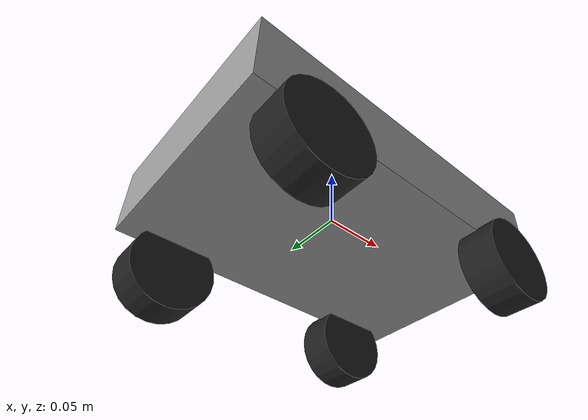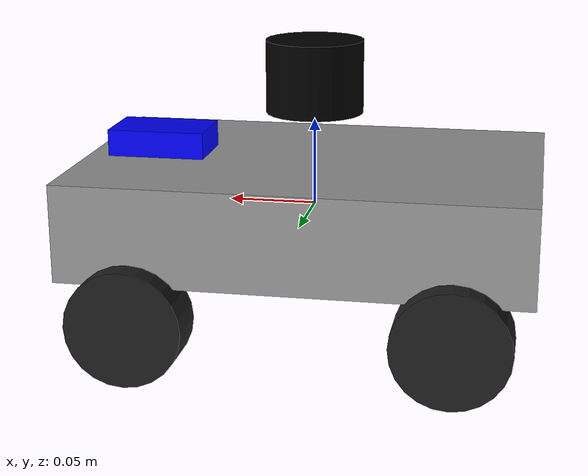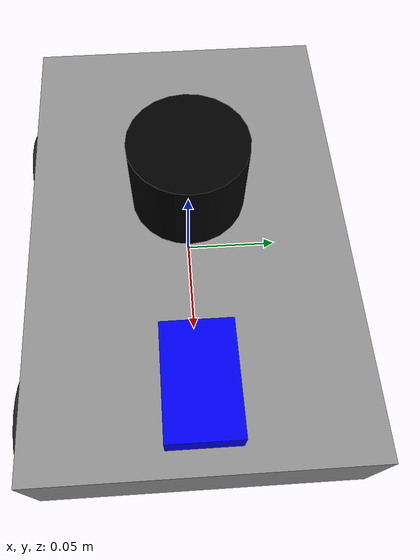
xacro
<?xml version="1.0"?>
<robot name="differential_drive_robot" xmlns:xacro="https://www.ros.org/wiki/xacro">

  <!-- Yahboom MSPM0-style 4WD aluminum chassis approximation. -->
  <xacro:property name="body_link_x_dim" value="0.260"/>
  <xacro:property name="body_link_y_dim" value="0.170"/>
  <xacro:property name="body_link_z_dim" value="0.055"/>

  <!-- WHEEL DIMENSIONS -->
  <xacro:property name="wheel_link_radius" value="0.0325"/>
  <xacro:property name="wheel_link_length" value="0.028"/>

  <!-- Approximate wheel center spacing for the 4WD chassis. -->
  <xacro:property name="wheel_track" value="0.170"/>
  <xacro:property name="wheel_base" value="0.175"/>

  <!-- Keeps wheel bottoms near the ground for the existing Gazebo spawn z=0.08m. -->
  <xacro:property name="wheel_link_z_location" value="-0.0475"/>

  <!-- MASS -->
  <xacro:property name="robot_total_mass" value="2.0"/>
  <xacro:property name="wheel_mass" value="0.15"/>
  <xacro:property name="body_mass" value="${robot_total_mass - 4.0*wheel_mass}"/>

  <!-- OFFSETS -->
  <xacro:property name="wheel_x_offset" value="${wheel_base/2.0}"/>
  <xacro:property name="wheel_y_offset" value="${wheel_track/2.0}"/>

  <!-- BODY INERTIA -->
  <xacro:property name="body_ixx"
                  value="${(1.0/12.0)*body_mass*(body_link_y_dim*body_link_y_dim + body_link_z_dim*body_link_z_dim)}"/>
  <xacro:property name="body_iyy"
                  value="${(1.0/12.0)*body_mass*(body_link_x_dim*body_link_x_dim + body_link_z_dim*body_link_z_dim)}"/>
  <xacro:property name="body_izz"
                  value="${(1.0/12.0)*body_mass*(body_link_x_dim*body_link_x_dim + body_link_y_dim*body_link_y_dim)}"/>

  <!-- WHEEL INERTIA -->
  <xacro:property name="Iz_wheel"
                  value="${0.5*wheel_mass*wheel_link_radius*wheel_link_radius}"/>
  <xacro:property name="I_wheel"
                  value="${(1.0/12.0)*wheel_mass*(3.0*wheel_link_radius*wheel_link_radius + wheel_link_length*wheel_link_length)}"/>

  <xacro:macro name="inertia_wheel">
    <inertial>
      <origin rpy="0 0 0" xyz="0 0 0"/>
      <mass value="${wheel_mass}"/>
      <inertia ixx="${I_wheel}" ixy="0.0" ixz="0.0"
               iyy="${I_wheel}" iyz="0.0" izz="${Iz_wheel}" />
    </inertial>
  </xacro:macro>

  <!-- Includes -->
  <xacro:include filename="$(find mobile_robot)/model/robot_yahboom_rplidar_c1.gazebo" />
  <xacro:include filename="$(find mobile_robot)/model/lidar_rplidar_c1.xacro" />
  <xacro:include filename="$(find mobile_robot)/model/camera.xacro" />

  <!-- Base footprint -->
  <link name="base_footprint"/>
  <link name="base_link"/>

  <joint name="base_footprint_joint" type="fixed">
    <parent link="base_footprint"/>
    <child link="base_link"/>
  </joint>

  <joint name="body_link_joint" type="fixed">
    <parent link="base_link"/>
    <child link="body_link"/>
  </joint>

  <!-- Main chassis body -->
  <link name="body_link">
    <visual>
      <geometry>
        <box size="${body_link_x_dim} ${body_link_y_dim} ${body_link_z_dim}" />
      </geometry>
      <origin rpy="0 0 0" xyz="0 0 0"/>
    </visual>

    <collision>
      <geometry>
        <box size="${body_link_x_dim} ${body_link_y_dim} ${body_link_z_dim}" />
      </geometry>
      <origin rpy="0 0 0" xyz="0 0 0"/>
    </collision>

    <inertial>
      <origin rpy="0 0 0" xyz="0 0 0"/>
      <mass value="${body_mass}" />
      <inertia
        ixx="${body_ixx}"
        ixy="0.0"
        ixz="0.0"
        iyy="${body_iyy}"
        iyz="0.0"
        izz="${body_izz}"/>
    </inertial>
  </link>

  <!-- Rear right -->
  <joint name="wheel1_joint" type="continuous">
    <parent link="body_link" />
    <child link="wheel1_link" />
    <origin xyz="${-wheel_x_offset} ${-wheel_y_offset} ${wheel_link_z_location}" rpy="0 0 0" />
    <axis xyz="0 1 0"/>
    <limit effort="1000" velocity="1000"/>
    <dynamics damping="1.0" friction="1.0"/>
  </joint>

  <link name="wheel1_link">
    <visual>
      <origin rpy="1.570795 0 0" xyz="0 0 0"/>
      <geometry>
        <cylinder length="${wheel_link_length}" radius="${wheel_link_radius}"/>
      </geometry>
    </visual>
    <collision>
      <origin rpy="1.570795 0 0" xyz="0 0 0"/>
      <geometry>
        <cylinder length="${wheel_link_length}" radius="${wheel_link_radius}"/>
      </geometry>
    </collision>
    <xacro:inertia_wheel />
  </link>

  <!-- Rear left -->
  <joint name="wheel2_joint" type="continuous">
    <parent link="body_link" />
    <child link="wheel2_link" />
    <origin xyz="${-wheel_x_offset} ${wheel_y_offset} ${wheel_link_z_location}" rpy="0 0 0" />
    <axis xyz="0 1 0"/>
    <limit effort="1000" velocity="1000"/>
    <dynamics damping="1.0" friction="1.0"/>
  </joint>

  <link name="wheel2_link">
    <visual>
      <origin rpy="1.570795 0 0" xyz="0 0 0"/>
      <geometry>
        <cylinder length="${wheel_link_length}" radius="${wheel_link_radius}"/>
      </geometry>
    </visual>
    <collision>
      <origin rpy="1.570795 0 0" xyz="0 0 0"/>
      <geometry>
        <cylinder length="${wheel_link_length}" radius="${wheel_link_radius}"/>
      </geometry>
    </collision>
    <xacro:inertia_wheel />
  </link>

  <!-- Front right -->
  <joint name="wheel3_joint" type="continuous">
    <parent link="body_link" />
    <child link="wheel3_link" />
    <origin xyz="${wheel_x_offset} ${-wheel_y_offset} ${wheel_link_z_location}" rpy="0 0 0" />
    <axis xyz="0 1 0"/>
    <limit effort="1000" velocity="1000"/>
    <dynamics damping="1.0" friction="1.0"/>
  </joint>

  <link name="wheel3_link">
    <visual>
      <origin rpy="1.570795 0 0" xyz="0 0 0"/>
      <geometry>
        <cylinder length="${wheel_link_length}" radius="${wheel_link_radius}"/>
      </geometry>
    </visual>
    <collision>
      <origin rpy="1.570795 0 0" xyz="0 0 0"/>
      <geometry>
        <cylinder length="${wheel_link_length}" radius="${wheel_link_radius}"/>
      </geometry>
    </collision>
    <xacro:inertia_wheel />
  </link>

  <!-- Front left -->
  <joint name="wheel4_joint" type="continuous">
    <parent link="body_link" />
    <child link="wheel4_link" />
    <origin xyz="${wheel_x_offset} ${wheel_y_offset} ${wheel_link_z_location}" rpy="0 0 0" />
    <axis xyz="0 1 0"/>
    <limit effort="1000" velocity="1000"/>
    <dynamics damping="1.0" friction="1.0"/>
  </joint>

  <link name="wheel4_link">
    <visual>
      <origin rpy="1.570795 0 0" xyz="0 0 0"/>
      <geometry>
        <cylinder length="${wheel_link_length}" radius="${wheel_link_radius}"/>
      </geometry>
    </visual>
    <collision>
      <origin rpy="1.570795 0 0" xyz="0 0 0"/>
      <geometry>
        <cylinder length="${wheel_link_length}" radius="${wheel_link_radius}"/>
      </geometry>
    </collision>
    <xacro:inertia_wheel />
  </link>

</robot>

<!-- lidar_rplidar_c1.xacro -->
<robot xmlns:xacro="http://www.ros.org/wiki/xacro">

  <joint name="lidar_joint" type="fixed">
    <parent link="body_link"/>
    <child link="lidar_link"/>
    <origin xyz="0 0 0.075" rpy="0 0 0"/>
  </joint>

  <link name="lidar_link">
    <visual>
      <geometry>
        <cylinder radius="0.0278" length="0.0413"/>
      </geometry>
      <material name="Black">
        <color rgba="0 0 0 1"/>
      </material>
    </visual>
    <collision>
      <geometry>
        <cylinder radius="0.0278" length="0.0413"/>
      </geometry>
    </collision>
    <inertial>
      <origin xyz="0 0 0" rpy="0 0 0"/>
      <mass value="0.11"/>
      <inertia ixx="0.000032" ixy="0" ixz="0" iyy="0.000032" iyz="0" izz="0.000043"/>
    </inertial>
  </link>

</robot>

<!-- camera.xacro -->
<robot xmlns:xacro="http://www.ros.org/wiki/xacro">

  <joint name="camera_joint" type="fixed">
    <parent link="body_link"/>
    <child link="camera_link"/>
    <origin xyz="0.09 0 0.03" rpy="0 0 0"/>
  </joint>

  <link name="camera_link">
    <visual>
      <geometry>
        <box size="0.056 0.036 0.0255"/>
      </geometry>
      <material name="Blue">
        <color rgba="0 0 1 1"/>
      </material>
    </visual>
    <collision>
      <geometry>
        <box size="0.056 0.036 0.0255"/>
      </geometry>
    </collision>
    <inertial>
      <origin xyz="0 0 0" rpy="0 0 0"/>
      <mass value="0.072"/>
      <inertia ixx="0.00002" ixy="0" ixz="0" iyy="0.00002" iyz="0" izz="0.00002"/>
    </inertial>
  </link>

  <joint name="camera_optical_joint" type="fixed">
    <parent link="camera_link"/>
    <child link="camera_link_optical"/>
    <origin xyz="0 0 0" rpy="-1.5708 0 -1.5708"/>
  </joint>

  <link name="camera_link_optical"/>

</robot>
